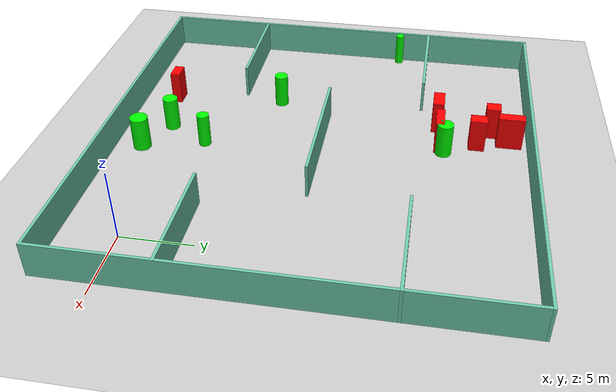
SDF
<sdf version="1.7">
 <world name="default">
  <light name="sun" type="directional">
   <pose>0 0 10 0 -0 0</pose>
   <diffuse>0.8 0.8 0.8 1</diffuse>
   <specular>0.2 0.2 0.2 1</specular>
   <attenuation>
    <range>1000</range>
    <constant>0.9</constant>
    <linear>0.01</linear>
    <quadratic>0.001</quadratic>
   </attenuation>
   <direction>-0.5 0.1 -0.9</direction>
   <spot><inner_angle>0</inner_angle><outer_angle>0</outer_angle><falloff>0</falloff></spot>
  </light>
  <model name="ground_plane">
   <static>1</static>
   <link name="link">
    <collision name="collision">
     <geometry><plane><normal>0 0 1</normal><size>100 100</size></plane></geometry>
     <surface>
      <contact><collide_bitmask>65535</collide_bitmask></contact>
      <friction><ode><mu>100</mu><mu2>50</mu2></ode></friction>
     </surface>
    </collision>
    <visual name="visual">
     <cast_shadows>0</cast_shadows>
     <geometry><plane><normal>0 0 1</normal><size>100 100</size></plane></geometry>
     <material>
      <script><uri>file://media/materials/scripts/gazebo.material</uri><name>Gazebo/Grey</name></script>
     </material>
    </visual>
   </link>
  </model>
  <gravity>0 0 -9.8</gravity>
  <magnetic_field>6e-06 2.3e-05 -4.2e-05</magnetic_field>
  <atmosphere type="adiabatic"/>
  <physics type="ode">
   <max_step_size>0.001</max_step_size>
   <real_time_factor>1</real_time_factor>
   <real_time_update_rate>1000</real_time_update_rate>
  </physics>
  <scene><ambient>0.4 0.4 0.4 1</ambient><background>0.7 0.7 0.7 1</background><shadows>1</shadows></scene>
  <spherical_coordinates>
   <surface_model>EARTH_WGS84</surface_model>
   <latitude_deg>0</latitude_deg>
   <longitude_deg>0</longitude_deg>
   <elevation>0</elevation>
   <heading_deg>0</heading_deg>
  </spherical_coordinates>
  <model name="my_base_walls">
   <link name="Wall_10">
    <collision name="Wall_10_Collision">
     <geometry><box><size>8.2 0.2 2.5</size></box></geometry>
     <pose>0 0 1.25 0 -0 0</pose>
    </collision>
    <visual name="Wall_10_Visual">
     <pose>0 0 1.25 0 -0 0</pose>
     <geometry><box><size>8.2 0.2 2.5</size></box></geometry>
     <material>
      <script><uri>file://media/materials/scripts/gazebo.material</uri><name>Gazebo/Grey</name></script>
      <ambient>0.435294 0.796078 0.67451 1</ambient>
     </material>
     <meta><layer>0</layer></meta>
    </visual>
    <pose>-11 -7 0 0 -0 0</pose>
   </link>
   <link name="Wall_12">
    <collision name="Wall_12_Collision">
     <geometry><box><size>8.2 0.2 2.5</size></box></geometry>
     <pose>0 0 1.25 0 -0 0</pose>
    </collision>
    <visual name="Wall_12_Visual">
     <pose>0 0 1.25 0 -0 0</pose>
     <geometry><box><size>8.2 0.2 2.5</size></box></geometry>
     <material>
      <script><uri>file://media/materials/scripts/gazebo.material</uri><name>Gazebo/Grey</name></script>
      <ambient>0.435294 0.796078 0.67451 1</ambient>
     </material>
     <meta><layer>0</layer></meta>
    </visual>
    <pose>-11 7 0 0 -0 0</pose>
   </link>
   <link name="Wall_14">
    <collision name="Wall_14_Collision">
     <geometry><box><size>8.2 0.2 2.5</size></box></geometry>
     <pose>0 0 1.25 0 -0 0</pose>
    </collision>
    <visual name="Wall_14_Visual">
     <pose>0 0 1.25 0 -0 0</pose>
     <geometry><box><size>8.2 0.2 2.5</size></box></geometry>
     <material>
      <script><uri>file://media/materials/scripts/gazebo.material</uri><name>Gazebo/Grey</name></script>
      <ambient>0.435294 0.796078 0.67451 1</ambient>
     </material>
     <meta><layer>0</layer></meta>
    </visual>
    <pose>11 7 0 0 -0 3.14159</pose>
   </link>
   <link name="Wall_16">
    <collision name="Wall_16_Collision">
     <geometry><box><size>10.2 0.2 2.5</size></box></geometry>
     <pose>0 0 1.25 0 -0 0</pose>
    </collision>
    <visual name="Wall_16_Visual">
     <pose>0 0 1.25 0 -0 0</pose>
     <geometry><box><size>10.2 0.2 2.5</size></box></geometry>
     <material>
      <script><uri>file://media/materials/scripts/gazebo.material</uri><name>Gazebo/Grey</name></script>
      <ambient>0.435294 0.796078 0.67451 1</ambient>
     </material>
     <meta><layer>0</layer></meta>
    </visual>
    <pose>0 0 0 0 -0 3.14159</pose>
   </link>
   <link name="Wall_2">
    <collision name="Wall_2_Collision">
     <geometry><box><size>30.2 0.2 2.5</size></box></geometry>
     <pose>0 0 1.25 0 -0 0</pose>
    </collision>
    <visual name="Wall_2_Visual">
     <pose>0 0 1.25 0 -0 0</pose>
     <geometry><box><size>30.2 0.2 2.5</size></box></geometry>
     <material>
      <script><uri>file://media/materials/scripts/gazebo.material</uri><name>Gazebo/Grey</name></script>
      <ambient>0.435294 0.796078 0.67451 1</ambient>
     </material>
     <meta><layer>0</layer></meta>
    </visual>
    <pose>0 -15 0 0 -0 3.14159</pose>
   </link>
   <link name="Wall_3">
    <collision name="Wall_3_Collision">
     <geometry><box><size>30.2 0.2 2.5</size></box></geometry>
     <pose>0 0 1.25 0 -0 0</pose>
    </collision>
    <visual name="Wall_3_Visual">
     <pose>0 0 1.25 0 -0 0</pose>
     <geometry><box><size>30.2 0.2 2.5</size></box></geometry>
     <material>
      <script><uri>file://media/materials/scripts/gazebo.material</uri><name>Gazebo/Grey</name></script>
      <ambient>0.435294 0.796078 0.67451 1</ambient>
     </material>
     <meta><layer>0</layer></meta>
    </visual>
    <pose>-15 0 0 0 -0 1.5708</pose>
   </link>
   <link name="Wall_4">
    <collision name="Wall_4_Collision">
     <geometry><box><size>30.2 0.2 2.5</size></box></geometry>
     <pose>0 0 1.25 0 -0 0</pose>
    </collision>
    <visual name="Wall_4_Visual">
     <pose>0 0 1.25 0 -0 0</pose>
     <geometry><box><size>30.2 0.2 2.5</size></box></geometry>
     <material>
      <script><uri>file://media/materials/scripts/gazebo.material</uri><name>Gazebo/Grey</name></script>
      <ambient>0.435294 0.796078 0.67451 1</ambient>
     </material>
     <meta><layer>0</layer></meta>
    </visual>
    <pose>0 15 0 0 -0 0</pose>
   </link>
   <link name="Wall_6">
    <collision name="Wall_6_Collision">
     <geometry><box><size>30.2 0.2 2.5</size></box></geometry>
     <pose>0 0 1.25 0 -0 0</pose>
    </collision>
    <visual name="Wall_6_Visual">
     <pose>0 0 1.25 0 -0 0</pose>
     <geometry><box><size>30.2 0.2 2.5</size></box></geometry>
     <material>
      <script><uri>file://media/materials/scripts/gazebo.material</uri><name>Gazebo/Grey</name></script>
      <ambient>0.435294 0.796078 0.67451 1</ambient>
     </material>
     <meta><layer>0</layer></meta>
    </visual>
    <pose>15 0 0 0 -0 1.5708</pose>
   </link>
   <link name="Wall_8">
    <collision name="Wall_8_Collision">
     <geometry><box><size>8.2 0.2 2.5</size></box></geometry>
     <pose>0 0 1.25 0 -0 0</pose>
    </collision>
    <visual name="Wall_8_Visual">
     <pose>0 0 1.25 0 -0 0</pose>
     <geometry><box><size>8.2 0.2 2.5</size></box></geometry>
     <material>
      <script><uri>file://media/materials/scripts/gazebo.material</uri><name>Gazebo/Grey</name></script>
      <ambient>0.435294 0.796078 0.67451 1</ambient>
     </material>
     <meta><layer>0</layer></meta>
    </visual>
    <pose>11 -7 0 0 -0 3.14159</pose>
   </link>
   <static>1</static>
   <pose>-11 11 0 0 -0 0</pose>
  </model>
  <model name="cylinder1">
   <static>1</static>
   <link name="link">
    <inertial>
     <mass>1</mass>
     <inertia><ixx>0.5</ixx><ixy>0</ixy><ixz>0</ixz><iyy>0.5</iyy><iyz>0</iyz><izz>1</izz></inertia>
    </inertial>
    <collision name="collision">
     <geometry><cylinder><radius>0.5863794650466914</radius><length>2.5</length></cylinder></geometry>
    </collision>
    <visual name="visual">
     <geometry><cylinder><radius>0.5863794650466914</radius><length>2.5</length></cylinder></geometry>
     <material>
      <ambient>0 1 0 1</ambient>
      <diffuse>0 1 0 1</diffuse>
      <specular>0.1 0.1 0.1 1</specular>
      <emissive>0 0 0 0</emissive>
     </material>
    </visual>
   </link>
   <pose>-12.426503723013358 19.867069323615137 1.25 0 0 0</pose>
  </model>
  <model name="cylinder2">
   <static>1</static>
   <link name="link">
    <inertial>
     <mass>1</mass>
     <inertia><ixx>0.5</ixx><ixy>0</ixy><ixz>0</ixz><iyy>0.5</iyy><iyz>0</iyz><izz>1</izz></inertia>
    </inertial>
    <collision name="collision">
     <geometry><cylinder><radius>0.3236430762471931</radius><length>2.5</length></cylinder></geometry>
    </collision>
    <visual name="visual">
     <geometry><cylinder><radius>0.3236430762471931</radius><length>2.5</length></cylinder></geometry>
     <material>
      <ambient>0 1 0 1</ambient>
      <diffuse>0 1 0 1</diffuse>
      <specular>0.1 0.1 0.1 1</specular>
      <emissive>0 0 0 0</emissive>
     </material>
    </visual>
   </link>
   <pose>-25.53348967127866 15.636825708359844 1.25 0 0 0</pose>
  </model>
  <model name="cylinder3">
   <static>1</static>
   <link name="link">
    <inertial>
     <mass>1</mass>
     <inertia><ixx>0.5</ixx><ixy>0</ixy><ixz>0</ixz><iyy>0.5</iyy><iyz>0</iyz><izz>1</izz></inertia>
    </inertial>
    <collision name="collision">
     <geometry><cylinder><radius>0.4486722105064247</radius><length>2.5</length></cylinder></geometry>
    </collision>
    <visual name="visual">
     <geometry><cylinder><radius>0.4486722105064247</radius><length>2.5</length></cylinder></geometry>
     <material>
      <ambient>0 1 0 1</ambient>
      <diffuse>0 1 0 1</diffuse>
      <specular>0.1 0.1 0.1 1</specular>
      <emissive>0 0 0 0</emissive>
     </material>
    </visual>
   </link>
   <pose>-10.795712100227188 2.5064601486412688 1.25 0 0 0</pose>
  </model>
  <model name="cylinder4">
   <static>1</static>
   <link name="link">
    <inertial>
     <mass>1</mass>
     <inertia><ixx>0.5</ixx><ixy>0</ixy><ixz>0</ixz><iyy>0.5</iyy><iyz>0</iyz><izz>1</izz></inertia>
    </inertial>
    <collision name="collision">
     <geometry><cylinder><radius>0.5479323360583153</radius><length>2.5</length></cylinder></geometry>
    </collision>
    <visual name="visual">
     <geometry><cylinder><radius>0.5479323360583153</radius><length>2.5</length></cylinder></geometry>
     <material>
      <ambient>0 1 0 1</ambient>
      <diffuse>0 1 0 1</diffuse>
      <specular>0.1 0.1 0.1 1</specular>
      <emissive>0 0 0 0</emissive>
     </material>
    </visual>
   </link>
   <pose>-12.586364850724308 -0.5428792136997593 1.25 0 0 0</pose>
  </model>
  <model name="cylinder5">
   <static>1</static>
   <link name="link">
    <inertial>
     <mass>1</mass>
     <inertia><ixx>0.5</ixx><ixy>0</ixy><ixz>0</ixz><iyy>0.5</iyy><iyz>0</iyz><izz>1</izz></inertia>
    </inertial>
    <collision name="collision">
     <geometry><cylinder><radius>0.5000922574655762</radius><length>2.5</length></cylinder></geometry>
    </collision>
    <visual name="visual">
     <geometry><cylinder><radius>0.5000922574655762</radius><length>2.5</length></cylinder></geometry>
     <material>
      <ambient>0 1 0 1</ambient>
      <diffuse>0 1 0 1</diffuse>
      <specular>0.1 0.1 0.1 1</specular>
      <emissive>0 0 0 0</emissive>
     </material>
    </visual>
   </link>
   <pose>-17.219124392446318 6.973826062846763 1.25 0 0 0</pose>
  </model>
  <model name="cylinder6">
   <static>1</static>
   <link name="link">
    <inertial>
     <mass>1</mass>
     <inertia><ixx>0.5</ixx><ixy>0</ixy><ixz>0</ixz><iyy>0.5</iyy><iyz>0</iyz><izz>1</izz></inertia>
    </inertial>
    <collision name="collision">
     <geometry><cylinder><radius>0.6460301158836614</radius><length>2.5</length></cylinder></geometry>
    </collision>
    <visual name="visual">
     <geometry><cylinder><radius>0.6460301158836614</radius><length>2.5</length></cylinder></geometry>
     <material>
      <ambient>0 1 0 1</ambient>
      <diffuse>0 1 0 1</diffuse>
      <specular>0.1 0.1 0.1 1</specular>
      <emissive>0 0 0 0</emissive>
     </material>
    </visual>
   </link>
   <pose>-9.70282558986651 -1.9300603603455948 1.25 0 0 0</pose>
  </model>
  <model name="box1">
   <static>1</static>
   <link name="link">
    <inertial>
     <mass>1</mass>
     <inertia><ixx>0.083</ixx><ixy>0</ixy><ixz>0</ixz><iyy>0.083</iyy><iyz>0</iyz><izz>0.083</izz></inertia>
    </inertial>
    <collision name="collision">
     <geometry><box><size>0.951755852001218 1.0196877371201885 2.5</size></box></geometry>
    </collision>
    <visual name="visual">
     <geometry><box><size>0.951755852001218 1.0196877371201885 2.5</size></box></geometry>
     <material>
      <ambient>1 0 0 1</ambient>
      <diffuse>1 0 0 1</diffuse>
      <specular>0.1 0.1 0.1 1</specular>
      <emissive>0 0 0 0</emissive>
     </material>
    </visual>
    <sensor name="my_contact" type="contact">
     <contact><collision>box_collision</collision><topic>__default_topic__</topic></contact>
    </sensor>
   </link>
   <pose>-15.341277407604796 23.299313908529225 1.25 0 0 0</pose>
  </model>
  <model name="box2">
   <static>1</static>
   <link name="link">
    <inertial>
     <mass>1</mass>
     <inertia><ixx>0.083</ixx><ixy>0</ixy><ixz>0</ixz><iyy>0.083</iyy><iyz>0</iyz><izz>0.083</izz></inertia>
    </inertial>
    <collision name="collision">
     <geometry><box><size>1.7087320439779379 0.8234858153853125 2.5</size></box></geometry>
    </collision>
    <visual name="visual">
     <geometry><box><size>1.7087320439779379 0.8234858153853125 2.5</size></box></geometry>
     <material>
      <ambient>1 0 0 1</ambient>
      <diffuse>1 0 0 1</diffuse>
      <specular>0.1 0.1 0.1 1</specular>
      <emissive>0 0 0 0</emissive>
     </material>
    </visual>
    <sensor name="my_contact" type="contact">
     <contact><collision>box_collision</collision><topic>__default_topic__</topic></contact>
    </sensor>
   </link>
   <pose>-15.84216006249395 19.293992390404988 1.25 0 0 0</pose>
  </model>
  <model name="box3">
   <static>1</static>
   <link name="link">
    <inertial>
     <mass>1</mass>
     <inertia><ixx>0.083</ixx><ixy>0</ixy><ixz>0</ixz><iyy>0.083</iyy><iyz>0</iyz><izz>0.083</izz></inertia>
    </inertial>
    <collision name="collision">
     <geometry><box><size>0.7679814597601317 1.8627299388725698 2.5</size></box></geometry>
    </collision>
    <visual name="visual">
     <geometry><box><size>0.7679814597601317 1.8627299388725698 2.5</size></box></geometry>
     <material>
      <ambient>1 0 0 1</ambient>
      <diffuse>1 0 0 1</diffuse>
      <specular>0.1 0.1 0.1 1</specular>
      <emissive>0 0 0 0</emissive>
     </material>
    </visual>
    <sensor name="my_contact" type="contact">
     <contact><collision>box_collision</collision><topic>__default_topic__</topic></contact>
    </sensor>
   </link>
   <pose>-14.115820909746818 24.56684190370463 1.25 0 0 0</pose>
  </model>
  <model name="box4">
   <static>1</static>
   <link name="link">
    <inertial>
     <mass>1</mass>
     <inertia><ixx>0.083</ixx><ixy>0</ixy><ixz>0</ixz><iyy>0.083</iyy><iyz>0</iyz><izz>0.083</izz></inertia>
    </inertial>
    <collision name="collision">
     <geometry><box><size>1.3104609817929451 0.7166508484893874 2.5</size></box></geometry>
    </collision>
    <visual name="visual">
     <geometry><box><size>1.3104609817929451 0.7166508484893874 2.5</size></box></geometry>
     <material>
      <ambient>1 0 0 1</ambient>
      <diffuse>1 0 0 1</diffuse>
      <specular>0.1 0.1 0.1 1</specular>
      <emissive>0 0 0 0</emissive>
     </material>
    </visual>
    <sensor name="my_contact" type="contact">
     <contact><collision>box_collision</collision><topic>__default_topic__</topic></contact>
    </sensor>
   </link>
   <pose>-16.646124612189883 -1.2964054094589104 1.25 0 0 0</pose>
  </model>
  <model name="box5">
   <static>1</static>
   <link name="link">
    <inertial>
     <mass>1</mass>
     <inertia><ixx>0.083</ixx><ixy>0</ixy><ixz>0</ixz><iyy>0.083</iyy><iyz>0</iyz><izz>0.083</izz></inertia>
    </inertial>
    <collision name="collision">
     <geometry><box><size>0.9188090512745808 1.1634726102208333 2.5</size></box></geometry>
    </collision>
    <visual name="visual">
     <geometry><box><size>0.9188090512745808 1.1634726102208333 2.5</size></box></geometry>
     <material>
      <ambient>1 0 0 1</ambient>
      <diffuse>1 0 0 1</diffuse>
      <specular>0.1 0.1 0.1 1</specular>
      <emissive>0 0 0 0</emissive>
     </material>
    </visual>
    <sensor name="my_contact" type="contact">
     <contact><collision>box_collision</collision><topic>__default_topic__</topic></contact>
    </sensor>
   </link>
   <pose>-13.542019452586835 22.216831419571882 1.25 0 0 0</pose>
  </model>
  <model name="box6">
   <static>1</static>
   <link name="link">
    <inertial>
     <mass>1</mass>
     <inertia><ixx>0.083</ixx><ixy>0</ixy><ixz>0</ixz><iyy>0.083</iyy><iyz>0</iyz><izz>0.083</izz></inertia>
    </inertial>
    <collision name="collision">
     <geometry><box><size>1.973196676719346 0.600174033908049 2.5</size></box></geometry>
    </collision>
    <visual name="visual">
     <geometry><box><size>1.973196676719346 0.600174033908049 2.5</size></box></geometry>
     <material>
      <ambient>1 0 0 1</ambient>
      <diffuse>1 0 0 1</diffuse>
      <specular>0.1 0.1 0.1 1</specular>
      <emissive>0 0 0 0</emissive>
     </material>
    </visual>
    <sensor name="my_contact" type="contact">
     <contact><collision>box_collision</collision><topic>__default_topic__</topic></contact>
    </sensor>
   </link>
   <pose>-13.379611610638445 19.48338285749972 1.25 0 0 0</pose>
  </model>
 </world>
</sdf>
